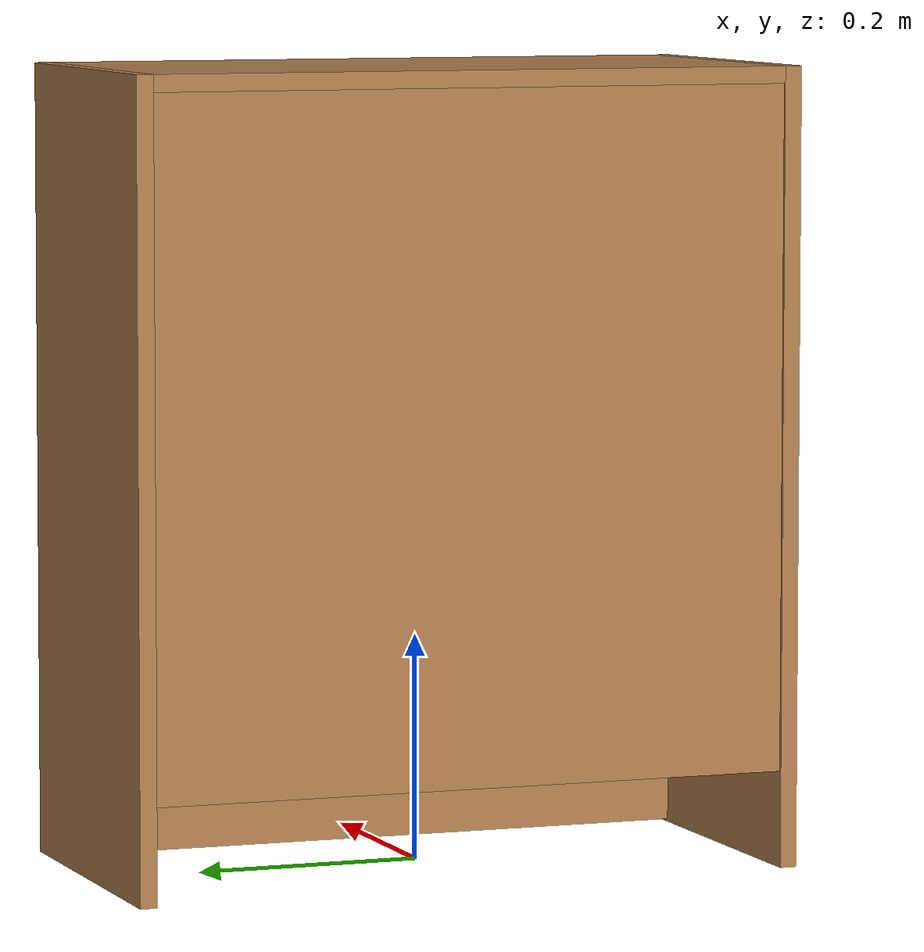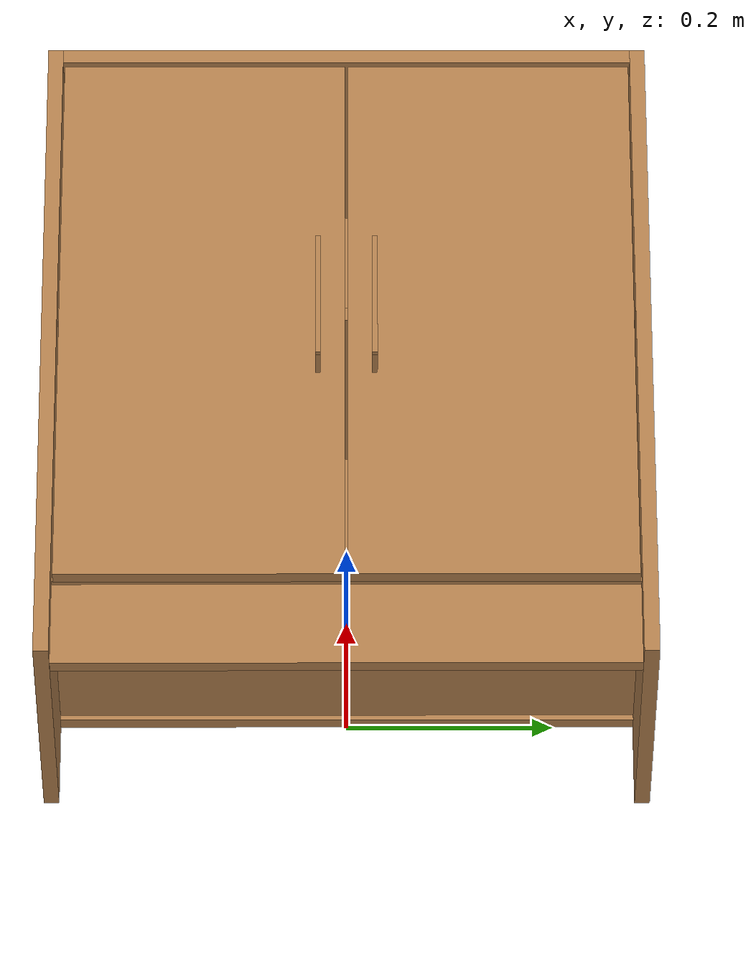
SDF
<sdf version='1.6'>
  <model name='cabinet_door'>
      <link name='cabinet'>
        <pose frame=''>0 0 0.35 0 -0 0</pose>
        <inertial>
          <mass>16</mass>
          <pose frame=''>0 0 0 0 -0 0</pose>
          <inertia>
            <ixx>1.59</ixx>
            <ixy>0</ixy>
            <ixz>0</ixz>
            <iyy>1.12</iyy>
            <iyz>0</iyz>
            <izz>0.91</izz>
          </inertia>
        </inertial>
        <collision name='back'>
          <pose frame=''>-0.14 0 0.035 0 -0 0</pose>
          <geometry>
            <box>
              <size>0.015 0.585 0.6</size>
            </box>
          </geometry>
          <max_contacts>10</max_contacts>
          <surface>
            <contact>
              <ode/>
            </contact>
            <bounce/>
            <friction>
              <torsional>
                <ode/>
              </torsional>
              <ode/>
            </friction>
          </surface>
        </collision>
        <visual name='visual1'>
          <pose frame=''>-0.14 0 0.035 0 -0 0</pose>
          <geometry>
            <box>
              <size>0.015 0.585 0.6</size>
            </box>
          </geometry>
          <material>
            <script>
              <uri>file://media/materials/scripts/gazebo.material</uri>
              <name>Gazebo/Wood</name>
            </script>
          </material>
        </visual>
        <collision name='left_side'>
          <pose frame=''>0 -0.2925 0 0 -0 0</pose>
          <geometry>
            <box>
              <size>0.3 0.015 0.7</size>
            </box>
          </geometry>
          <max_contacts>10</max_contacts>
          <surface>
            <contact>
              <ode/>
            </contact>
            <bounce/>
            <friction>
              <torsional>
                <ode/>
              </torsional>
              <ode/>
            </friction>
          </surface>
        </collision>
        <visual name='visual2'>
          <pose frame=''>0 -0.2925 0 0 -0 0</pose>
          <geometry>
            <box>
              <size>0.3 0.015 0.7</size>
            </box>
          </geometry>
          <material>
            <script>
              <uri>file://media/materials/scripts/gazebo.material</uri>
              <name>Gazebo/Wood</name>
            </script>
          </material>
        </visual>
        <collision name='right_side'>
          <pose frame=''>0 0.2925 0 0 -0 0</pose>
          <geometry>
            <box>
              <size>0.3 0.015 0.7</size>
            </box>
          </geometry>
          <max_contacts>10</max_contacts>
          <surface>
            <contact>
              <ode/>
            </contact>
            <bounce/>
            <friction>
              <torsional>
                <ode/>
              </torsional>
              <ode/>
            </friction>
          </surface>
        </collision>
        <visual name='visual3'>
          <pose frame=''>0 0.2925 0 0 -0 0</pose>
          <geometry>
            <box>
              <size>0.3 0.015 0.7</size>
            </box>
          </geometry>
          <material>
            <script>
              <uri>file://media/materials/scripts/gazebo.material</uri>
              <name>Gazebo/Wood</name>
            </script>
          </material>
        </visual>
        <collision name='bottom'>
          <pose frame=''>-0.002 0 -0.2525 0 -0 0</pose>
          <geometry>
            <box>
              <size>0.26 0.57 0.015</size>
            </box>
          </geometry>
          <max_contacts>10</max_contacts>
          <surface>
            <contact>
              <ode/>
            </contact>
            <bounce/>
            <friction>
              <torsional>
                <ode/>
              </torsional>
              <ode/>
            </friction>
          </surface>
        </collision>
        <visual name='visual4'>
          <pose frame=''>-0.002 0 -0.2525 0 -0 0</pose>
          <geometry>
            <box>
              <size>0.26 0.57 0.015</size>
            </box>
          </geometry>
          <material>
            <script>
              <uri>file://media/materials/scripts/gazebo.material</uri>
              <name>Gazebo/Wood</name>
            </script>
          </material>
        </visual>
        <collision name='top'>
          <pose frame=''>0 0 0.3425 0 -0 0</pose>
          <geometry>
            <box>
              <size>0.3 0.57 0.015</size>
            </box>
          </geometry>
          <max_contacts>10</max_contacts>
          <surface>
            <contact>
              <ode/>
            </contact>
            <bounce/>
            <friction>
              <torsional>
                <ode/>
              </torsional>
              <ode/>
            </friction>
          </surface>
        </collision>
        <visual name='visual5'>
          <pose frame=''>0 0 0.3425 0 -0 0</pose>
          <geometry>
            <box>
              <size>0.3 0.57 0.015</size>
            </box>
          </geometry>
          <material>
            <script>
              <uri>file://media/materials/scripts/gazebo.material</uri>
              <name>Gazebo/Wood</name>
            </script>
          </material>
        </visual>
        <collision name='middle_shelf'>
          <pose frame=''>-0.002 0 0.0475 0 -0 0</pose>
          <geometry>
            <box>
              <size>0.26 0.57 0.015</size>
            </box>
          </geometry>
          <max_contacts>10</max_contacts>
          <surface>
            <contact>
              <ode/>
            </contact>
            <bounce/>
            <friction>
              <torsional>
                <ode/>
              </torsional>
              <ode/>
            </friction>
          </surface>
        </collision>
        <visual name='visual6'>
          <pose frame=''>-0.002 0 0.0475 0 -0 0</pose>
          <geometry>
            <box>
              <size>0.26 0.57 0.015</size>
            </box>
          </geometry>
          <material>
            <script>
              <uri>file://media/materials/scripts/gazebo.material</uri>
              <name>Gazebo/Wood</name>
            </script>
          </material>
        </visual>
        <collision name='low_front'>
          <pose frame=''>0.115 0 -0.3025 0 -0 0</pose>
          <geometry>
            <box>
              <size>0.015 0.57 0.09</size>
            </box>
          </geometry>
          <max_contacts>10</max_contacts>
          <surface>
            <contact>
              <ode/>
            </contact>
            <bounce/>
            <friction>
              <torsional>
                <ode/>
              </torsional>
              <ode/>
            </friction>
          </surface>
        </collision>
        <visual name='visual7'>
          <pose frame=''>0.115 0 -0.3025 0 -0 0</pose>
          <geometry>
            <box>
              <size>0.015 0.57 0.09</size>
            </box>
          </geometry>
          <material>
            <script>
              <uri>file://media/materials/scripts/gazebo.material</uri>
              <name>Gazebo/Wood</name>
            </script>
          </material>
        </visual>
        <self_collide>0</self_collide>
        <kinematic>0</kinematic>
      </link>
      <link name='right_door'>
        <pose frame=''>0.135 0.2835 0.3875 0 -0 0</pose>
        <inertial>
          <mass>1.7</mass>
          <pose frame=''>0 -0.141 0 0 -0 0</pose>
          <inertia>d
            <ixx>0.06</ixx>
            <ixy>0</ixy>
            <ixz>0</ixz>
            <iyy>0.49</iyy>
            <iyz>0</iyz>
            <izz>0.111</izz>
          </inertia>
        </inertial>
        <collision name='right_face'>
          <pose frame=''>0 -0.141 0 0 -0 0</pose>
          <geometry>
            <box>
              <size>0.015 0.282 0.595</size>
            </box>
          </geometry>
          <max_contacts>10</max_contacts>
          <surface>
            <contact>
              <ode/>
            </contact>
            <bounce/>
            <friction>
              <torsional>
                <ode/>
              </torsional>
              <ode/>
            </friction>
          </surface>
        </collision>
        <visual name='visual8'>
          <pose frame=''>0 -0.141 0 0 -0 0</pose>
          <geometry>
            <box>
              <size>0.015 0.282 0.595</size>
            </box>
          </geometry>
          <material>
            <script>
              <uri>file://media/materials/scripts/gazebo.material</uri>
              <name>Gazebo/Wood</name>
            </script>
          </material>
        </visual>
        <collision name='right_handle'>
          <pose frame=''>0.04304 -0.2555 0 0 -0 0</pose>
          <geometry>
            <box>
              <size>0.005 0.005 0.136</size>
            </box>
          </geometry>
          <max_contacts>10</max_contacts>
          <surface>
            <contact>
              <ode/>
            </contact>
            <bounce/>
            <friction>
              <torsional>
                <ode/>
              </torsional>
              <ode/>
            </friction>
          </surface>
        </collision>
        <visual name='visual9'>
          <pose frame=''>0.04304 -0.2555 0 0 -0 0</pose>
          <geometry>
            <box>
              <size>0.005 0.005 0.136</size>
            </box>
          </geometry>
          <material>
            <script>
              <uri>file://media/materials/scripts/gazebo.material</uri>
              <name>Gazebo/Wood</name>
            </script>
          </material>
        </visual>
        <collision name='right_handle_up'>
          <pose frame=''>0.02475 -0.2555 0.0656 0 -0 0</pose>
          <geometry>
            <box>
              <size>0.04 0.005 0.005</size>
            </box>
          </geometry>
          <max_contacts>10</max_contacts>
          <surface>
            <contact>
              <ode/>
            </contact>
            <bounce/>
            <friction>
              <torsional>
                <ode/>
              </torsional>
              <ode/>
            </friction>
          </surface>
        </collision>
        <visual name='visual10'>
          <pose frame=''>0.02475 -0.2555 0.0656 0 -0 0</pose>
          <geometry>
            <box>
              <size>0.04 0.005 0.005</size>
            </box>
          </geometry>
          <material>
            <script>
              <uri>file://media/materials/scripts/gazebo.material</uri>
              <name>Gazebo/Wood</name>
            </script>
          </material>
        </visual>
        <collision name='right_handle_bo'>
          <pose frame=''>0.02475 -0.2555 -0.06542 0 -0 0</pose>
          <geometry>
            <box>
              <size>0.04 0.005 0.005</size>
            </box>
          </geometry>
          <max_contacts>10</max_contacts>
          <surface>
            <contact>
              <ode/>
            </contact>
            <bounce/>
            <friction>
              <torsional>
                <ode/>
              </torsional>
              <ode/>
            </friction>
          </surface>
        </collision>
        <visual name='visual11'>
          <pose frame=''>0.02475 -0.2555 -0.06542 0 -0 0</pose>
          <geometry>
            <box>
              <size>0.04 0.005 0.005</size>
            </box>
          </geometry>
          <material>
            <script>
              <uri>file://media/materials/scripts/gazebo.material</uri>
              <name>Gazebo/Wood</name>
            </script>
          </material>
        </visual>
        <self_collide>0</self_collide>
        <kinematic>0</kinematic>
      </link>
      <joint name='right_joint' type='revolute'>
        <parent>cabinet</parent>
        <child>right_door</child>
        <axis>
          <xyz>0 0 1</xyz>
          <limit>
            <lower>-0.001</lower>
            <upper>1.58</upper>
          </limit>
          <dynamics>
            <damping>0.5</damping>
            <friction>0.1</friction>
            <spring_reference>0</spring_reference>
            <spring_stiffness>0</spring_stiffness>
          </dynamics>
          <use_parent_model_frame>1</use_parent_model_frame>
        </axis>
        <pose frame=''>0 0 0 0 -0 0</pose>
      </joint>
      <link name='left_door'>
        <pose frame=''>0.135 -0.2835 0.3875 0 -0 0</pose>
        <inertial>
          <mass>1</mass>
          <pose frame=''>0 0.141 0 0 -0 0</pose>
          <inertia>
            <ixx>0.06</ixx>
            <ixy>0</ixy>
            <ixz>0</ixz>
            <iyy>0.49</iyy>
            <iyz>0</iyz>
            <izz>0.111</izz>
          </inertia>
        </inertial>
        <collision name='left_face'>
          <pose frame=''>0 0.141 0 0 -0 0</pose>
          <geometry>
            <box>
              <size>0.015 0.282 0.595</size>
            </box>
          </geometry>
          <max_contacts>10</max_contacts>
          <surface>
            <contact>
              <ode/>
            </contact>
            <bounce/>
            <friction>
              <torsional>
                <ode/>
              </torsional>
              <ode/>
            </friction>
          </surface>
        </collision>
        <visual name='visual12'>
          <pose frame=''>0 0.141 0 0 -0 0</pose>
          <geometry>
            <box>
              <size>0.015 0.282 0.595</size>
            </box>
          </geometry>
          <material>
            <script>
              <uri>file://media/materials/scripts/gazebo.material</uri>
              <name>Gazebo/Wood</name>
            </script>
          </material>
        </visual>
        <collision name='left_handle'>
          <pose frame=''>0.04304 0.2555 0 0 -0 0</pose>
          <geometry>
            <box>
              <size>0.005 0.005 0.136</size>
            </box>
          </geometry>
          <max_contacts>10</max_contacts>
          <surface>
            <contact>
              <ode/>
            </contact>
            <bounce/>
            <friction>
              <torsional>
                <ode/>
              </torsional>
              <ode/>
            </friction>
          </surface>
        </collision>
        <visual name='visual13'>
          <pose frame=''>0.04304 0.2555 0 0 -0 0</pose>
          <geometry>
            <box>
              <size>0.005 0.005 0.136</size>
            </box>
          </geometry>
          <material>
            <script>
              <uri>file://media/materials/scripts/gazebo.material</uri>
              <name>Gazebo/Wood</name>
            </script>
          </material>
        </visual>
        <collision name='left_handle_up'>
          <pose frame=''>0.02475 0.2555 0.0656 0 -0 0</pose>
          <geometry>
            <box>
              <size>0.04 0.005 0.005</size>
            </box>
          </geometry>
          <max_contacts>10</max_contacts>
          <surface>
            <contact>
              <ode/>
            </contact>
            <bounce/>
            <friction>
              <torsional>
                <ode/>
              </torsional>
              <ode/>
            </friction>
          </surface>
        </collision>
        <visual name='visual14'>
          <pose frame=''>0.02475 0.2555 0.0656 0 -0 0</pose>
          <geometry>
            <box>
              <size>0.04 0.005 0.005</size>
            </box>
          </geometry>
          <material>
            <script>
              <uri>file://media/materials/scripts/gazebo.material</uri>
              <name>Gazebo/Wood</name>
            </script>
          </material>
        </visual>
        <collision name='left_handle_bo'>
          <pose frame=''>0.02475 0.2555 -0.06542 0 -0 0</pose>
          <geometry>
            <box>
              <size>0.04 0.005 0.005</size>
            </box>
          </geometry>
          <max_contacts>10</max_contacts>
          <surface>
            <contact>
              <ode/>
            </contact>
            <bounce/>
            <friction>
              <torsional>
                <ode/>
              </torsional>
              <ode/>
            </friction>
          </surface>
        </collision>
        <visual name='visual15'>
          <pose frame=''>0.02475 0.2555 -0.06542 0 -0 0</pose>
          <geometry>
            <box>
              <size>0.04 0.005 0.005</size>
            </box>
          </geometry>
          <material>
            <script>
              <uri>file://media/materials/scripts/gazebo.material</uri>
              <name>Gazebo/Wood</name>
            </script>
          </material>
        </visual>
        <self_collide>0</self_collide>
        <kinematic>0</kinematic>
      </link>
      <joint name='left_joint' type='revolute'>
        <parent>cabinet</parent>
        <child>left_door</child>
        <axis>
          <xyz>0 0 1</xyz>
          <limit>
            <lower>-1.58</lower>
            <upper>0.001</upper>
          </limit>
          <dynamics>
            <damping>0.5</damping>
            <friction>0.1</friction>
            <spring_reference>0</spring_reference>
            <spring_stiffness>0</spring_stiffness>
          </dynamics>
          <use_parent_model_frame>1</use_parent_model_frame>
        </axis>
        <pose frame=''>0 0 0 0 -0 0</pose>
      </joint>
    </model>
</sdf>
